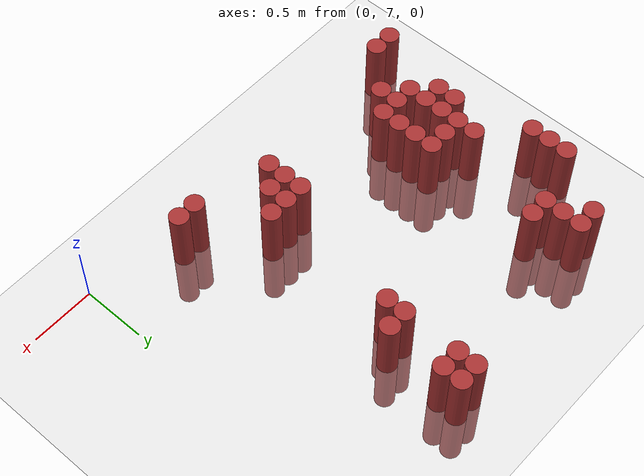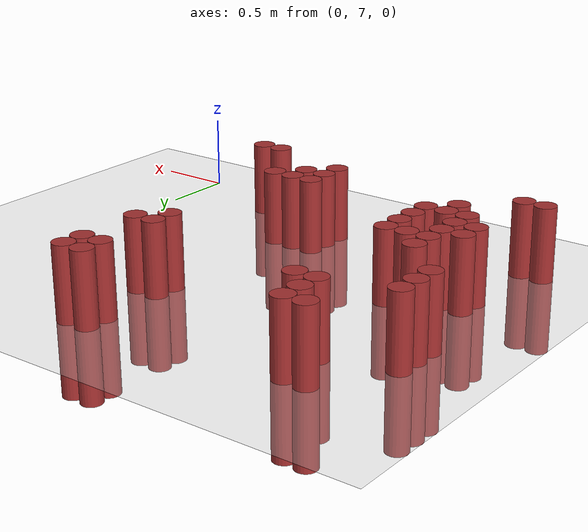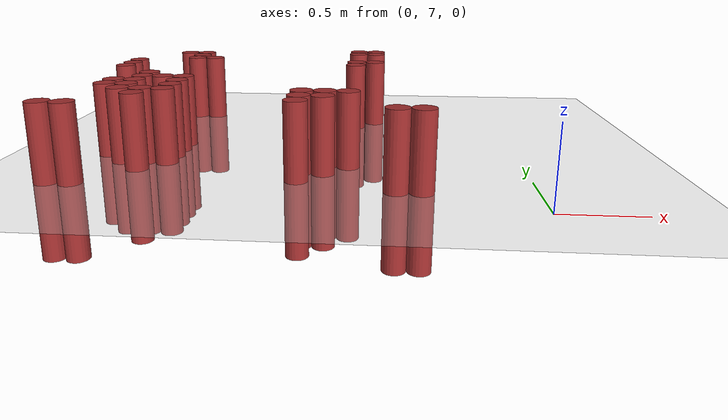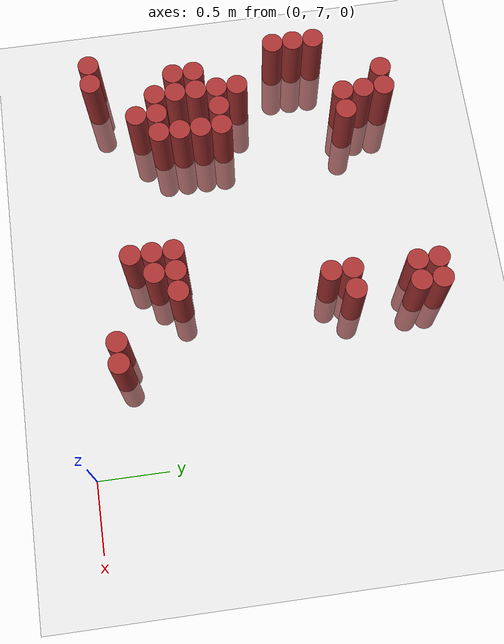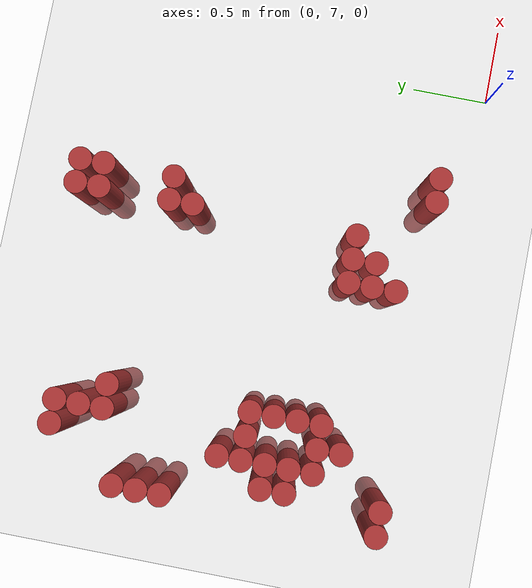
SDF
<sdf version="1.6">
 <world name="default">
  <model name="ground_plane">
   <static>1</static>
   <link name="link">
    <collision name="collision">
     <geometry><plane><normal>0 0 1</normal><size>100 100</size></plane></geometry>
     <surface><friction><ode><mu>100</mu><mu2>50</mu2></ode></friction></surface>
    </collision>
    <visual name="visual">
     <cast_shadows>0</cast_shadows>
     <geometry><plane><normal>0 0 1</normal><size>100 100</size></plane></geometry>
     <material>
      <script><uri>file://media/materials/scripts/gazebo.material</uri><name>Gazebo/Grey</name></script>
     </material>
    </visual>
   </link>
  </model>
  <model name="unit_cylinder_210">
   <static>1</static>
   <pose>-2.925000 7.275000 0.000000 0.000000 0.000000 0.000000</pose>
   <link name="link">
    <inertial>
     <mass>1</mass>
     <inertia><ixx>0.145833</ixx><ixy>0</ixy><ixz>0</ixz><iyy>0.145833</iyy><iyz>0</iyz><izz>0.125</izz></inertia>
    </inertial>
    <collision name="collision">
     <geometry><cylinder><radius>0.075000</radius><length>1</length></cylinder></geometry>
    </collision>
    <visual name="visual">
     <geometry><cylinder><radius>0.075000</radius><length>1</length></cylinder></geometry>
     <material>
      <ambient>0.648000 0.192000 0.192000 1</ambient>
      <diffuse>0.648000 0.192000 0.192000 1</diffuse>
     </material>
     <material>
      <script><name>Gazebo/Grey</name><uri>file://media/materials/scripts/gazebo.material</uri></script>
     </material>
    </visual>
    <sensor name="sensor_contact" type="contact"><contact><collision>collision</collision></contact></sensor>
   </link>
   <plugin filename="gz-sim-touchplugin-system" name="gz::sim::systems::TouchPlugin">
    <target>robot</target>
    <namespace>robot</namespace>
    <time>0.001</time>
    <enabled>true</enabled>
   </plugin>
  </model>
  <model name="unit_cylinder_211">
   <static>1</static>
   <pose>-2.925000 8.625000 0.000000 0.000000 0.000000 0.000000</pose>
   <link name="link">
    <inertial>
     <mass>1</mass>
     <inertia><ixx>0.145833</ixx><ixy>0</ixy><ixz>0</ixz><iyy>0.145833</iyy><iyz>0</iyz><izz>0.125</izz></inertia>
    </inertial>
    <collision name="collision">
     <geometry><cylinder><radius>0.075000</radius><length>1</length></cylinder></geometry>
    </collision>
    <visual name="visual">
     <geometry><cylinder><radius>0.075000</radius><length>1</length></cylinder></geometry>
     <material>
      <ambient>0.648000 0.192000 0.192000 1</ambient>
      <diffuse>0.648000 0.192000 0.192000 1</diffuse>
     </material>
     <material>
      <script><name>Gazebo/Grey</name><uri>file://media/materials/scripts/gazebo.material</uri></script>
     </material>
    </visual>
    <sensor name="sensor_contact" type="contact"><contact><collision>collision</collision></contact></sensor>
   </link>
   <plugin filename="gz-sim-touchplugin-system" name="gz::sim::systems::TouchPlugin">
    <target>robot</target>
    <namespace>robot</namespace>
    <time>0.001</time>
    <enabled>true</enabled>
   </plugin>
  </model>
  <model name="unit_cylinder_212">
   <static>1</static>
   <pose>-2.925000 8.775000 0.000000 0.000000 0.000000 0.000000</pose>
   <link name="link">
    <inertial>
     <mass>1</mass>
     <inertia><ixx>0.145833</ixx><ixy>0</ixy><ixz>0</ixz><iyy>0.145833</iyy><iyz>0</iyz><izz>0.125</izz></inertia>
    </inertial>
    <collision name="collision">
     <geometry><cylinder><radius>0.075000</radius><length>1</length></cylinder></geometry>
    </collision>
    <visual name="visual">
     <geometry><cylinder><radius>0.075000</radius><length>1</length></cylinder></geometry>
     <material>
      <ambient>0.648000 0.192000 0.192000 1</ambient>
      <diffuse>0.648000 0.192000 0.192000 1</diffuse>
     </material>
     <material>
      <script><name>Gazebo/Grey</name><uri>file://media/materials/scripts/gazebo.material</uri></script>
     </material>
    </visual>
    <sensor name="sensor_contact" type="contact"><contact><collision>collision</collision></contact></sensor>
   </link>
   <plugin filename="gz-sim-touchplugin-system" name="gz::sim::systems::TouchPlugin">
    <target>robot</target>
    <namespace>robot</namespace>
    <time>0.001</time>
    <enabled>true</enabled>
   </plugin>
  </model>
  <model name="unit_cylinder_213">
   <static>1</static>
   <pose>-2.925000 8.925000 0.000000 0.000000 0.000000 0.000000</pose>
   <link name="link">
    <inertial>
     <mass>1</mass>
     <inertia><ixx>0.145833</ixx><ixy>0</ixy><ixz>0</ixz><iyy>0.145833</iyy><iyz>0</iyz><izz>0.125</izz></inertia>
    </inertial>
    <collision name="collision">
     <geometry><cylinder><radius>0.075000</radius><length>1</length></cylinder></geometry>
    </collision>
    <visual name="visual">
     <geometry><cylinder><radius>0.075000</radius><length>1</length></cylinder></geometry>
     <material>
      <ambient>0.648000 0.192000 0.192000 1</ambient>
      <diffuse>0.648000 0.192000 0.192000 1</diffuse>
     </material>
     <material>
      <script><name>Gazebo/Grey</name><uri>file://media/materials/scripts/gazebo.material</uri></script>
     </material>
    </visual>
    <sensor name="sensor_contact" type="contact"><contact><collision>collision</collision></contact></sensor>
   </link>
   <plugin filename="gz-sim-touchplugin-system" name="gz::sim::systems::TouchPlugin">
    <target>robot</target>
    <namespace>robot</namespace>
    <time>0.001</time>
    <enabled>true</enabled>
   </plugin>
  </model>
  <model name="unit_cylinder_217">
   <static>1</static>
   <pose>-2.775000 7.275000 0.000000 0.000000 0.000000 0.000000</pose>
   <link name="link">
    <inertial>
     <mass>1</mass>
     <inertia><ixx>0.145833</ixx><ixy>0</ixy><ixz>0</ixz><iyy>0.145833</iyy><iyz>0</iyz><izz>0.125</izz></inertia>
    </inertial>
    <collision name="collision">
     <geometry><cylinder><radius>0.075000</radius><length>1</length></cylinder></geometry>
    </collision>
    <visual name="visual">
     <geometry><cylinder><radius>0.075000</radius><length>1</length></cylinder></geometry>
     <material>
      <ambient>0.648000 0.192000 0.192000 1</ambient>
      <diffuse>0.648000 0.192000 0.192000 1</diffuse>
     </material>
     <material>
      <script><name>Gazebo/Grey</name><uri>file://media/materials/scripts/gazebo.material</uri></script>
     </material>
    </visual>
    <sensor name="sensor_contact" type="contact"><contact><collision>collision</collision></contact></sensor>
   </link>
   <plugin filename="gz-sim-touchplugin-system" name="gz::sim::systems::TouchPlugin">
    <target>robot</target>
    <namespace>robot</namespace>
    <time>0.001</time>
    <enabled>true</enabled>
   </plugin>
  </model>
  <model name="unit_cylinder_218">
   <static>1</static>
   <pose>-2.775000 7.875000 0.000000 0.000000 0.000000 0.000000</pose>
   <link name="link">
    <inertial>
     <mass>1</mass>
     <inertia><ixx>0.145833</ixx><ixy>0</ixy><ixz>0</ixz><iyy>0.145833</iyy><iyz>0</iyz><izz>0.125</izz></inertia>
    </inertial>
    <collision name="collision">
     <geometry><cylinder><radius>0.075000</radius><length>1</length></cylinder></geometry>
    </collision>
    <visual name="visual">
     <geometry><cylinder><radius>0.075000</radius><length>1</length></cylinder></geometry>
     <material>
      <ambient>0.648000 0.192000 0.192000 1</ambient>
      <diffuse>0.648000 0.192000 0.192000 1</diffuse>
     </material>
     <material>
      <script><name>Gazebo/Grey</name><uri>file://media/materials/scripts/gazebo.material</uri></script>
     </material>
    </visual>
    <sensor name="sensor_contact" type="contact"><contact><collision>collision</collision></contact></sensor>
   </link>
   <plugin filename="gz-sim-touchplugin-system" name="gz::sim::systems::TouchPlugin">
    <target>robot</target>
    <namespace>robot</namespace>
    <time>0.001</time>
    <enabled>true</enabled>
   </plugin>
  </model>
  <model name="unit_cylinder_219">
   <static>1</static>
   <pose>-2.775000 8.025000 0.000000 0.000000 0.000000 0.000000</pose>
   <link name="link">
    <inertial>
     <mass>1</mass>
     <inertia><ixx>0.145833</ixx><ixy>0</ixy><ixz>0</ixz><iyy>0.145833</iyy><iyz>0</iyz><izz>0.125</izz></inertia>
    </inertial>
    <collision name="collision">
     <geometry><cylinder><radius>0.075000</radius><length>1</length></cylinder></geometry>
    </collision>
    <visual name="visual">
     <geometry><cylinder><radius>0.075000</radius><length>1</length></cylinder></geometry>
     <material>
      <ambient>0.648000 0.192000 0.192000 1</ambient>
      <diffuse>0.648000 0.192000 0.192000 1</diffuse>
     </material>
     <material>
      <script><name>Gazebo/Grey</name><uri>file://media/materials/scripts/gazebo.material</uri></script>
     </material>
    </visual>
    <sensor name="sensor_contact" type="contact"><contact><collision>collision</collision></contact></sensor>
   </link>
   <plugin filename="gz-sim-touchplugin-system" name="gz::sim::systems::TouchPlugin">
    <target>robot</target>
    <namespace>robot</namespace>
    <time>0.001</time>
    <enabled>true</enabled>
   </plugin>
  </model>
  <model name="unit_cylinder_225">
   <static>1</static>
   <pose>-2.625000 7.725000 0.000000 0.000000 0.000000 0.000000</pose>
   <link name="link">
    <inertial>
     <mass>1</mass>
     <inertia><ixx>0.145833</ixx><ixy>0</ixy><ixz>0</ixz><iyy>0.145833</iyy><iyz>0</iyz><izz>0.125</izz></inertia>
    </inertial>
    <collision name="collision">
     <geometry><cylinder><radius>0.075000</radius><length>1</length></cylinder></geometry>
    </collision>
    <visual name="visual">
     <geometry><cylinder><radius>0.075000</radius><length>1</length></cylinder></geometry>
     <material>
      <ambient>0.648000 0.192000 0.192000 1</ambient>
      <diffuse>0.648000 0.192000 0.192000 1</diffuse>
     </material>
     <material>
      <script><name>Gazebo/Grey</name><uri>file://media/materials/scripts/gazebo.material</uri></script>
     </material>
    </visual>
    <sensor name="sensor_contact" type="contact"><contact><collision>collision</collision></contact></sensor>
   </link>
   <plugin filename="gz-sim-touchplugin-system" name="gz::sim::systems::TouchPlugin">
    <target>robot</target>
    <namespace>robot</namespace>
    <time>0.001</time>
    <enabled>true</enabled>
   </plugin>
  </model>
  <model name="unit_cylinder_226">
   <static>1</static>
   <pose>-2.625000 7.875000 0.000000 0.000000 0.000000 0.000000</pose>
   <link name="link">
    <inertial>
     <mass>1</mass>
     <inertia><ixx>0.145833</ixx><ixy>0</ixy><ixz>0</ixz><iyy>0.145833</iyy><iyz>0</iyz><izz>0.125</izz></inertia>
    </inertial>
    <collision name="collision">
     <geometry><cylinder><radius>0.075000</radius><length>1</length></cylinder></geometry>
    </collision>
    <visual name="visual">
     <geometry><cylinder><radius>0.075000</radius><length>1</length></cylinder></geometry>
     <material>
      <ambient>0.648000 0.192000 0.192000 1</ambient>
      <diffuse>0.648000 0.192000 0.192000 1</diffuse>
     </material>
     <material>
      <script><name>Gazebo/Grey</name><uri>file://media/materials/scripts/gazebo.material</uri></script>
     </material>
    </visual>
    <sensor name="sensor_contact" type="contact"><contact><collision>collision</collision></contact></sensor>
   </link>
   <plugin filename="gz-sim-touchplugin-system" name="gz::sim::systems::TouchPlugin">
    <target>robot</target>
    <namespace>robot</namespace>
    <time>0.001</time>
    <enabled>true</enabled>
   </plugin>
  </model>
  <model name="unit_cylinder_227">
   <static>1</static>
   <pose>-2.625000 8.025000 0.000000 0.000000 0.000000 0.000000</pose>
   <link name="link">
    <inertial>
     <mass>1</mass>
     <inertia><ixx>0.145833</ixx><ixy>0</ixy><ixz>0</ixz><iyy>0.145833</iyy><iyz>0</iyz><izz>0.125</izz></inertia>
    </inertial>
    <collision name="collision">
     <geometry><cylinder><radius>0.075000</radius><length>1</length></cylinder></geometry>
    </collision>
    <visual name="visual">
     <geometry><cylinder><radius>0.075000</radius><length>1</length></cylinder></geometry>
     <material>
      <ambient>0.648000 0.192000 0.192000 1</ambient>
      <diffuse>0.648000 0.192000 0.192000 1</diffuse>
     </material>
     <material>
      <script><name>Gazebo/Grey</name><uri>file://media/materials/scripts/gazebo.material</uri></script>
     </material>
    </visual>
    <sensor name="sensor_contact" type="contact"><contact><collision>collision</collision></contact></sensor>
   </link>
   <plugin filename="gz-sim-touchplugin-system" name="gz::sim::systems::TouchPlugin">
    <target>robot</target>
    <namespace>robot</namespace>
    <time>0.001</time>
    <enabled>true</enabled>
   </plugin>
  </model>
  <model name="unit_cylinder_228">
   <static>1</static>
   <pose>-2.625000 8.175000 0.000000 0.000000 0.000000 0.000000</pose>
   <link name="link">
    <inertial>
     <mass>1</mass>
     <inertia><ixx>0.145833</ixx><ixy>0</ixy><ixz>0</ixz><iyy>0.145833</iyy><iyz>0</iyz><izz>0.125</izz></inertia>
    </inertial>
    <collision name="collision">
     <geometry><cylinder><radius>0.075000</radius><length>1</length></cylinder></geometry>
    </collision>
    <visual name="visual">
     <geometry><cylinder><radius>0.075000</radius><length>1</length></cylinder></geometry>
     <material>
      <ambient>0.648000 0.192000 0.192000 1</ambient>
      <diffuse>0.648000 0.192000 0.192000 1</diffuse>
     </material>
     <material>
      <script><name>Gazebo/Grey</name><uri>file://media/materials/scripts/gazebo.material</uri></script>
     </material>
    </visual>
    <sensor name="sensor_contact" type="contact"><contact><collision>collision</collision></contact></sensor>
   </link>
   <plugin filename="gz-sim-touchplugin-system" name="gz::sim::systems::TouchPlugin">
    <target>robot</target>
    <namespace>robot</namespace>
    <time>0.001</time>
    <enabled>true</enabled>
   </plugin>
  </model>
  <model name="unit_cylinder_229">
   <static>1</static>
   <pose>-2.625000 8.325000 0.000000 0.000000 0.000000 0.000000</pose>
   <link name="link">
    <inertial>
     <mass>1</mass>
     <inertia><ixx>0.145833</ixx><ixy>0</ixy><ixz>0</ixz><iyy>0.145833</iyy><iyz>0</iyz><izz>0.125</izz></inertia>
    </inertial>
    <collision name="collision">
     <geometry><cylinder><radius>0.075000</radius><length>1</length></cylinder></geometry>
    </collision>
    <visual name="visual">
     <geometry><cylinder><radius>0.075000</radius><length>1</length></cylinder></geometry>
     <material>
      <ambient>0.648000 0.192000 0.192000 1</ambient>
      <diffuse>0.648000 0.192000 0.192000 1</diffuse>
     </material>
     <material>
      <script><name>Gazebo/Grey</name><uri>file://media/materials/scripts/gazebo.material</uri></script>
     </material>
    </visual>
    <sensor name="sensor_contact" type="contact"><contact><collision>collision</collision></contact></sensor>
   </link>
   <plugin filename="gz-sim-touchplugin-system" name="gz::sim::systems::TouchPlugin">
    <target>robot</target>
    <namespace>robot</namespace>
    <time>0.001</time>
    <enabled>true</enabled>
   </plugin>
  </model>
  <model name="unit_cylinder_230">
   <static>1</static>
   <pose>-2.625000 9.375000 0.000000 0.000000 0.000000 0.000000</pose>
   <link name="link">
    <inertial>
     <mass>1</mass>
     <inertia><ixx>0.145833</ixx><ixy>0</ixy><ixz>0</ixz><iyy>0.145833</iyy><iyz>0</iyz><izz>0.125</izz></inertia>
    </inertial>
    <collision name="collision">
     <geometry><cylinder><radius>0.075000</radius><length>1</length></cylinder></geometry>
    </collision>
    <visual name="visual">
     <geometry><cylinder><radius>0.075000</radius><length>1</length></cylinder></geometry>
     <material>
      <ambient>0.648000 0.192000 0.192000 1</ambient>
      <diffuse>0.648000 0.192000 0.192000 1</diffuse>
     </material>
     <material>
      <script><name>Gazebo/Grey</name><uri>file://media/materials/scripts/gazebo.material</uri></script>
     </material>
    </visual>
    <sensor name="sensor_contact" type="contact"><contact><collision>collision</collision></contact></sensor>
   </link>
   <plugin filename="gz-sim-touchplugin-system" name="gz::sim::systems::TouchPlugin">
    <target>robot</target>
    <namespace>robot</namespace>
    <time>0.001</time>
    <enabled>true</enabled>
   </plugin>
  </model>
  <model name="unit_cylinder_239">
   <static>1</static>
   <pose>-2.475000 7.575000 0.000000 0.000000 0.000000 0.000000</pose>
   <link name="link">
    <inertial>
     <mass>1</mass>
     <inertia><ixx>0.145833</ixx><ixy>0</ixy><ixz>0</ixz><iyy>0.145833</iyy><iyz>0</iyz><izz>0.125</izz></inertia>
    </inertial>
    <collision name="collision">
     <geometry><cylinder><radius>0.075000</radius><length>1</length></cylinder></geometry>
    </collision>
    <visual name="visual">
     <geometry><cylinder><radius>0.075000</radius><length>1</length></cylinder></geometry>
     <material>
      <ambient>0.648000 0.192000 0.192000 1</ambient>
      <diffuse>0.648000 0.192000 0.192000 1</diffuse>
     </material>
     <material>
      <script><name>Gazebo/Grey</name><uri>file://media/materials/scripts/gazebo.material</uri></script>
     </material>
    </visual>
    <sensor name="sensor_contact" type="contact"><contact><collision>collision</collision></contact></sensor>
   </link>
   <plugin filename="gz-sim-touchplugin-system" name="gz::sim::systems::TouchPlugin">
    <target>robot</target>
    <namespace>robot</namespace>
    <time>0.001</time>
    <enabled>true</enabled>
   </plugin>
  </model>
  <model name="unit_cylinder_240">
   <static>1</static>
   <pose>-2.475000 7.725000 0.000000 0.000000 0.000000 0.000000</pose>
   <link name="link">
    <inertial>
     <mass>1</mass>
     <inertia><ixx>0.145833</ixx><ixy>0</ixy><ixz>0</ixz><iyy>0.145833</iyy><iyz>0</iyz><izz>0.125</izz></inertia>
    </inertial>
    <collision name="collision">
     <geometry><cylinder><radius>0.075000</radius><length>1</length></cylinder></geometry>
    </collision>
    <visual name="visual">
     <geometry><cylinder><radius>0.075000</radius><length>1</length></cylinder></geometry>
     <material>
      <ambient>0.648000 0.192000 0.192000 1</ambient>
      <diffuse>0.648000 0.192000 0.192000 1</diffuse>
     </material>
     <material>
      <script><name>Gazebo/Grey</name><uri>file://media/materials/scripts/gazebo.material</uri></script>
     </material>
    </visual>
    <sensor name="sensor_contact" type="contact"><contact><collision>collision</collision></contact></sensor>
   </link>
   <plugin filename="gz-sim-touchplugin-system" name="gz::sim::systems::TouchPlugin">
    <target>robot</target>
    <namespace>robot</namespace>
    <time>0.001</time>
    <enabled>true</enabled>
   </plugin>
  </model>
  <model name="unit_cylinder_241">
   <static>1</static>
   <pose>-2.475000 8.175000 0.000000 0.000000 0.000000 0.000000</pose>
   <link name="link">
    <inertial>
     <mass>1</mass>
     <inertia><ixx>0.145833</ixx><ixy>0</ixy><ixz>0</ixz><iyy>0.145833</iyy><iyz>0</iyz><izz>0.125</izz></inertia>
    </inertial>
    <collision name="collision">
     <geometry><cylinder><radius>0.075000</radius><length>1</length></cylinder></geometry>
    </collision>
    <visual name="visual">
     <geometry><cylinder><radius>0.075000</radius><length>1</length></cylinder></geometry>
     <material>
      <ambient>0.648000 0.192000 0.192000 1</ambient>
      <diffuse>0.648000 0.192000 0.192000 1</diffuse>
     </material>
     <material>
      <script><name>Gazebo/Grey</name><uri>file://media/materials/scripts/gazebo.material</uri></script>
     </material>
    </visual>
    <sensor name="sensor_contact" type="contact"><contact><collision>collision</collision></contact></sensor>
   </link>
   <plugin filename="gz-sim-touchplugin-system" name="gz::sim::systems::TouchPlugin">
    <target>robot</target>
    <namespace>robot</namespace>
    <time>0.001</time>
    <enabled>true</enabled>
   </plugin>
  </model>
  <model name="unit_cylinder_242">
   <static>1</static>
   <pose>-2.475000 9.075000 0.000000 0.000000 0.000000 0.000000</pose>
   <link name="link">
    <inertial>
     <mass>1</mass>
     <inertia><ixx>0.145833</ixx><ixy>0</ixy><ixz>0</ixz><iyy>0.145833</iyy><iyz>0</iyz><izz>0.125</izz></inertia>
    </inertial>
    <collision name="collision">
     <geometry><cylinder><radius>0.075000</radius><length>1</length></cylinder></geometry>
    </collision>
    <visual name="visual">
     <geometry><cylinder><radius>0.075000</radius><length>1</length></cylinder></geometry>
     <material>
      <ambient>0.648000 0.192000 0.192000 1</ambient>
      <diffuse>0.648000 0.192000 0.192000 1</diffuse>
     </material>
     <material>
      <script><name>Gazebo/Grey</name><uri>file://media/materials/scripts/gazebo.material</uri></script>
     </material>
    </visual>
    <sensor name="sensor_contact" type="contact"><contact><collision>collision</collision></contact></sensor>
   </link>
   <plugin filename="gz-sim-touchplugin-system" name="gz::sim::systems::TouchPlugin">
    <target>robot</target>
    <namespace>robot</namespace>
    <time>0.001</time>
    <enabled>true</enabled>
   </plugin>
  </model>
  <model name="unit_cylinder_243">
   <static>1</static>
   <pose>-2.475000 9.225000 0.000000 0.000000 0.000000 0.000000</pose>
   <link name="link">
    <inertial>
     <mass>1</mass>
     <inertia><ixx>0.145833</ixx><ixy>0</ixy><ixz>0</ixz><iyy>0.145833</iyy><iyz>0</iyz><izz>0.125</izz></inertia>
    </inertial>
    <collision name="collision">
     <geometry><cylinder><radius>0.075000</radius><length>1</length></cylinder></geometry>
    </collision>
    <visual name="visual">
     <geometry><cylinder><radius>0.075000</radius><length>1</length></cylinder></geometry>
     <material>
      <ambient>0.648000 0.192000 0.192000 1</ambient>
      <diffuse>0.648000 0.192000 0.192000 1</diffuse>
     </material>
     <material>
      <script><name>Gazebo/Grey</name><uri>file://media/materials/scripts/gazebo.material</uri></script>
     </material>
    </visual>
    <sensor name="sensor_contact" type="contact"><contact><collision>collision</collision></contact></sensor>
   </link>
   <plugin filename="gz-sim-touchplugin-system" name="gz::sim::systems::TouchPlugin">
    <target>robot</target>
    <namespace>robot</namespace>
    <time>0.001</time>
    <enabled>true</enabled>
   </plugin>
  </model>
  <model name="unit_cylinder_244">
   <static>1</static>
   <pose>-2.475000 9.375000 0.000000 0.000000 0.000000 0.000000</pose>
   <link name="link">
    <inertial>
     <mass>1</mass>
     <inertia><ixx>0.145833</ixx><ixy>0</ixy><ixz>0</ixz><iyy>0.145833</iyy><iyz>0</iyz><izz>0.125</izz></inertia>
    </inertial>
    <collision name="collision">
     <geometry><cylinder><radius>0.075000</radius><length>1</length></cylinder></geometry>
    </collision>
    <visual name="visual">
     <geometry><cylinder><radius>0.075000</radius><length>1</length></cylinder></geometry>
     <material>
      <ambient>0.648000 0.192000 0.192000 1</ambient>
      <diffuse>0.648000 0.192000 0.192000 1</diffuse>
     </material>
     <material>
      <script><name>Gazebo/Grey</name><uri>file://media/materials/scripts/gazebo.material</uri></script>
     </material>
    </visual>
    <sensor name="sensor_contact" type="contact"><contact><collision>collision</collision></contact></sensor>
   </link>
   <plugin filename="gz-sim-touchplugin-system" name="gz::sim::systems::TouchPlugin">
    <target>robot</target>
    <namespace>robot</namespace>
    <time>0.001</time>
    <enabled>true</enabled>
   </plugin>
  </model>
  <model name="unit_cylinder_249">
   <static>1</static>
   <pose>-2.325000 7.725000 0.000000 0.000000 0.000000 0.000000</pose>
   <link name="link">
    <inertial>
     <mass>1</mass>
     <inertia><ixx>0.145833</ixx><ixy>0</ixy><ixz>0</ixz><iyy>0.145833</iyy><iyz>0</iyz><izz>0.125</izz></inertia>
    </inertial>
    <collision name="collision">
     <geometry><cylinder><radius>0.075000</radius><length>1</length></cylinder></geometry>
    </collision>
    <visual name="visual">
     <geometry><cylinder><radius>0.075000</radius><length>1</length></cylinder></geometry>
     <material>
      <ambient>0.648000 0.192000 0.192000 1</ambient>
      <diffuse>0.648000 0.192000 0.192000 1</diffuse>
     </material>
     <material>
      <script><name>Gazebo/Grey</name><uri>file://media/materials/scripts/gazebo.material</uri></script>
     </material>
    </visual>
    <sensor name="sensor_contact" type="contact"><contact><collision>collision</collision></contact></sensor>
   </link>
   <plugin filename="gz-sim-touchplugin-system" name="gz::sim::systems::TouchPlugin">
    <target>robot</target>
    <namespace>robot</namespace>
    <time>0.001</time>
    <enabled>true</enabled>
   </plugin>
  </model>
  <model name="unit_cylinder_250">
   <static>1</static>
   <pose>-2.325000 7.875000 0.000000 0.000000 0.000000 0.000000</pose>
   <link name="link">
    <inertial>
     <mass>1</mass>
     <inertia><ixx>0.145833</ixx><ixy>0</ixy><ixz>0</ixz><iyy>0.145833</iyy><iyz>0</iyz><izz>0.125</izz></inertia>
    </inertial>
    <collision name="collision">
     <geometry><cylinder><radius>0.075000</radius><length>1</length></cylinder></geometry>
    </collision>
    <visual name="visual">
     <geometry><cylinder><radius>0.075000</radius><length>1</length></cylinder></geometry>
     <material>
      <ambient>0.648000 0.192000 0.192000 1</ambient>
      <diffuse>0.648000 0.192000 0.192000 1</diffuse>
     </material>
     <material>
      <script><name>Gazebo/Grey</name><uri>file://media/materials/scripts/gazebo.material</uri></script>
     </material>
    </visual>
    <sensor name="sensor_contact" type="contact"><contact><collision>collision</collision></contact></sensor>
   </link>
   <plugin filename="gz-sim-touchplugin-system" name="gz::sim::systems::TouchPlugin">
    <target>robot</target>
    <namespace>robot</namespace>
    <time>0.001</time>
    <enabled>true</enabled>
   </plugin>
  </model>
  <model name="unit_cylinder_251">
   <static>1</static>
   <pose>-2.325000 8.025000 0.000000 0.000000 0.000000 0.000000</pose>
   <link name="link">
    <inertial>
     <mass>1</mass>
     <inertia><ixx>0.145833</ixx><ixy>0</ixy><ixz>0</ixz><iyy>0.145833</iyy><iyz>0</iyz><izz>0.125</izz></inertia>
    </inertial>
    <collision name="collision">
     <geometry><cylinder><radius>0.075000</radius><length>1</length></cylinder></geometry>
    </collision>
    <visual name="visual">
     <geometry><cylinder><radius>0.075000</radius><length>1</length></cylinder></geometry>
     <material>
      <ambient>0.648000 0.192000 0.192000 1</ambient>
      <diffuse>0.648000 0.192000 0.192000 1</diffuse>
     </material>
     <material>
      <script><name>Gazebo/Grey</name><uri>file://media/materials/scripts/gazebo.material</uri></script>
     </material>
    </visual>
    <sensor name="sensor_contact" type="contact"><contact><collision>collision</collision></contact></sensor>
   </link>
   <plugin filename="gz-sim-touchplugin-system" name="gz::sim::systems::TouchPlugin">
    <target>robot</target>
    <namespace>robot</namespace>
    <time>0.001</time>
    <enabled>true</enabled>
   </plugin>
  </model>
  <model name="unit_cylinder_252">
   <static>1</static>
   <pose>-2.325000 8.175000 0.000000 0.000000 0.000000 0.000000</pose>
   <link name="link">
    <inertial>
     <mass>1</mass>
     <inertia><ixx>0.145833</ixx><ixy>0</ixy><ixz>0</ixz><iyy>0.145833</iyy><iyz>0</iyz><izz>0.125</izz></inertia>
    </inertial>
    <collision name="collision">
     <geometry><cylinder><radius>0.075000</radius><length>1</length></cylinder></geometry>
    </collision>
    <visual name="visual">
     <geometry><cylinder><radius>0.075000</radius><length>1</length></cylinder></geometry>
     <material>
      <ambient>0.648000 0.192000 0.192000 1</ambient>
      <diffuse>0.648000 0.192000 0.192000 1</diffuse>
     </material>
     <material>
      <script><name>Gazebo/Grey</name><uri>file://media/materials/scripts/gazebo.material</uri></script>
     </material>
    </visual>
    <sensor name="sensor_contact" type="contact"><contact><collision>collision</collision></contact></sensor>
   </link>
   <plugin filename="gz-sim-touchplugin-system" name="gz::sim::systems::TouchPlugin">
    <target>robot</target>
    <namespace>robot</namespace>
    <time>0.001</time>
    <enabled>true</enabled>
   </plugin>
  </model>
  <model name="unit_cylinder_253">
   <static>1</static>
   <pose>-2.325000 9.075000 0.000000 0.000000 0.000000 0.000000</pose>
   <link name="link">
    <inertial>
     <mass>1</mass>
     <inertia><ixx>0.145833</ixx><ixy>0</ixy><ixz>0</ixz><iyy>0.145833</iyy><iyz>0</iyz><izz>0.125</izz></inertia>
    </inertial>
    <collision name="collision">
     <geometry><cylinder><radius>0.075000</radius><length>1</length></cylinder></geometry>
    </collision>
    <visual name="visual">
     <geometry><cylinder><radius>0.075000</radius><length>1</length></cylinder></geometry>
     <material>
      <ambient>0.648000 0.192000 0.192000 1</ambient>
      <diffuse>0.648000 0.192000 0.192000 1</diffuse>
     </material>
     <material>
      <script><name>Gazebo/Grey</name><uri>file://media/materials/scripts/gazebo.material</uri></script>
     </material>
    </visual>
    <sensor name="sensor_contact" type="contact"><contact><collision>collision</collision></contact></sensor>
   </link>
   <plugin filename="gz-sim-touchplugin-system" name="gz::sim::systems::TouchPlugin">
    <target>robot</target>
    <namespace>robot</namespace>
    <time>0.001</time>
    <enabled>true</enabled>
   </plugin>
  </model>
  <model name="unit_cylinder_275">
   <static>1</static>
   <pose>-1.425000 7.425000 0.000000 0.000000 0.000000 0.000000</pose>
   <link name="link">
    <inertial>
     <mass>1</mass>
     <inertia><ixx>0.145833</ixx><ixy>0</ixy><ixz>0</ixz><iyy>0.145833</iyy><iyz>0</iyz><izz>0.125</izz></inertia>
    </inertial>
    <collision name="collision">
     <geometry><cylinder><radius>0.075000</radius><length>1</length></cylinder></geometry>
    </collision>
    <visual name="visual">
     <geometry><cylinder><radius>0.075000</radius><length>1</length></cylinder></geometry>
     <material>
      <ambient>0.648000 0.192000 0.192000 1</ambient>
      <diffuse>0.648000 0.192000 0.192000 1</diffuse>
     </material>
     <material>
      <script><name>Gazebo/Grey</name><uri>file://media/materials/scripts/gazebo.material</uri></script>
     </material>
    </visual>
    <sensor name="sensor_contact" type="contact"><contact><collision>collision</collision></contact></sensor>
   </link>
   <plugin filename="gz-sim-touchplugin-system" name="gz::sim::systems::TouchPlugin">
    <target>robot</target>
    <namespace>robot</namespace>
    <time>0.001</time>
    <enabled>true</enabled>
   </plugin>
  </model>
  <model name="unit_cylinder_276">
   <static>1</static>
   <pose>-1.425000 7.575000 0.000000 0.000000 0.000000 0.000000</pose>
   <link name="link">
    <inertial>
     <mass>1</mass>
     <inertia><ixx>0.145833</ixx><ixy>0</ixy><ixz>0</ixz><iyy>0.145833</iyy><iyz>0</iyz><izz>0.125</izz></inertia>
    </inertial>
    <collision name="collision">
     <geometry><cylinder><radius>0.075000</radius><length>1</length></cylinder></geometry>
    </collision>
    <visual name="visual">
     <geometry><cylinder><radius>0.075000</radius><length>1</length></cylinder></geometry>
     <material>
      <ambient>0.648000 0.192000 0.192000 1</ambient>
      <diffuse>0.648000 0.192000 0.192000 1</diffuse>
     </material>
     <material>
      <script><name>Gazebo/Grey</name><uri>file://media/materials/scripts/gazebo.material</uri></script>
     </material>
    </visual>
    <sensor name="sensor_contact" type="contact"><contact><collision>collision</collision></contact></sensor>
   </link>
   <plugin filename="gz-sim-touchplugin-system" name="gz::sim::systems::TouchPlugin">
    <target>robot</target>
    <namespace>robot</namespace>
    <time>0.001</time>
    <enabled>true</enabled>
   </plugin>
  </model>
  <model name="unit_cylinder_277">
   <static>1</static>
   <pose>-1.425000 7.725000 0.000000 0.000000 0.000000 0.000000</pose>
   <link name="link">
    <inertial>
     <mass>1</mass>
     <inertia><ixx>0.145833</ixx><ixy>0</ixy><ixz>0</ixz><iyy>0.145833</iyy><iyz>0</iyz><izz>0.125</izz></inertia>
    </inertial>
    <collision name="collision">
     <geometry><cylinder><radius>0.075000</radius><length>1</length></cylinder></geometry>
    </collision>
    <visual name="visual">
     <geometry><cylinder><radius>0.075000</radius><length>1</length></cylinder></geometry>
     <material>
      <ambient>0.648000 0.192000 0.192000 1</ambient>
      <diffuse>0.648000 0.192000 0.192000 1</diffuse>
     </material>
     <material>
      <script><name>Gazebo/Grey</name><uri>file://media/materials/scripts/gazebo.material</uri></script>
     </material>
    </visual>
    <sensor name="sensor_contact" type="contact"><contact><collision>collision</collision></contact></sensor>
   </link>
   <plugin filename="gz-sim-touchplugin-system" name="gz::sim::systems::TouchPlugin">
    <target>robot</target>
    <namespace>robot</namespace>
    <time>0.001</time>
    <enabled>true</enabled>
   </plugin>
  </model>
  <model name="unit_cylinder_278">
   <static>1</static>
   <pose>-1.275000 7.575000 0.000000 0.000000 0.000000 0.000000</pose>
   <link name="link">
    <inertial>
     <mass>1</mass>
     <inertia><ixx>0.145833</ixx><ixy>0</ixy><ixz>0</ixz><iyy>0.145833</iyy><iyz>0</iyz><izz>0.125</izz></inertia>
    </inertial>
    <collision name="collision">
     <geometry><cylinder><radius>0.075000</radius><length>1</length></cylinder></geometry>
    </collision>
    <visual name="visual">
     <geometry><cylinder><radius>0.075000</radius><length>1</length></cylinder></geometry>
     <material>
      <ambient>0.648000 0.192000 0.192000 1</ambient>
      <diffuse>0.648000 0.192000 0.192000 1</diffuse>
     </material>
     <material>
      <script><name>Gazebo/Grey</name><uri>file://media/materials/scripts/gazebo.material</uri></script>
     </material>
    </visual>
    <sensor name="sensor_contact" type="contact"><contact><collision>collision</collision></contact></sensor>
   </link>
   <plugin filename="gz-sim-touchplugin-system" name="gz::sim::systems::TouchPlugin">
    <target>robot</target>
    <namespace>robot</namespace>
    <time>0.001</time>
    <enabled>true</enabled>
   </plugin>
  </model>
  <model name="unit_cylinder_279">
   <static>1</static>
   <pose>-1.275000 7.725000 0.000000 0.000000 0.000000 0.000000</pose>
   <link name="link">
    <inertial>
     <mass>1</mass>
     <inertia><ixx>0.145833</ixx><ixy>0</ixy><ixz>0</ixz><iyy>0.145833</iyy><iyz>0</iyz><izz>0.125</izz></inertia>
    </inertial>
    <collision name="collision">
     <geometry><cylinder><radius>0.075000</radius><length>1</length></cylinder></geometry>
    </collision>
    <visual name="visual">
     <geometry><cylinder><radius>0.075000</radius><length>1</length></cylinder></geometry>
     <material>
      <ambient>0.648000 0.192000 0.192000 1</ambient>
      <diffuse>0.648000 0.192000 0.192000 1</diffuse>
     </material>
     <material>
      <script><name>Gazebo/Grey</name><uri>file://media/materials/scripts/gazebo.material</uri></script>
     </material>
    </visual>
    <sensor name="sensor_contact" type="contact"><contact><collision>collision</collision></contact></sensor>
   </link>
   <plugin filename="gz-sim-touchplugin-system" name="gz::sim::systems::TouchPlugin">
    <target>robot</target>
    <namespace>robot</namespace>
    <time>0.001</time>
    <enabled>true</enabled>
   </plugin>
  </model>
  <model name="unit_cylinder_280">
   <static>1</static>
   <pose>-1.125000 7.725000 0.000000 0.000000 0.000000 0.000000</pose>
   <link name="link">
    <inertial>
     <mass>1</mass>
     <inertia><ixx>0.145833</ixx><ixy>0</ixy><ixz>0</ixz><iyy>0.145833</iyy><iyz>0</iyz><izz>0.125</izz></inertia>
    </inertial>
    <collision name="collision">
     <geometry><cylinder><radius>0.075000</radius><length>1</length></cylinder></geometry>
    </collision>
    <visual name="visual">
     <geometry><cylinder><radius>0.075000</radius><length>1</length></cylinder></geometry>
     <material>
      <ambient>0.648000 0.192000 0.192000 1</ambient>
      <diffuse>0.648000 0.192000 0.192000 1</diffuse>
     </material>
     <material>
      <script><name>Gazebo/Grey</name><uri>file://media/materials/scripts/gazebo.material</uri></script>
     </material>
    </visual>
    <sensor name="sensor_contact" type="contact"><contact><collision>collision</collision></contact></sensor>
   </link>
   <plugin filename="gz-sim-touchplugin-system" name="gz::sim::systems::TouchPlugin">
    <target>robot</target>
    <namespace>robot</namespace>
    <time>0.001</time>
    <enabled>true</enabled>
   </plugin>
  </model>
  <model name="unit_cylinder_281">
   <static>1</static>
   <pose>-1.125000 8.775000 0.000000 0.000000 0.000000 0.000000</pose>
   <link name="link">
    <inertial>
     <mass>1</mass>
     <inertia><ixx>0.145833</ixx><ixy>0</ixy><ixz>0</ixz><iyy>0.145833</iyy><iyz>0</iyz><izz>0.125</izz></inertia>
    </inertial>
    <collision name="collision">
     <geometry><cylinder><radius>0.075000</radius><length>1</length></cylinder></geometry>
    </collision>
    <visual name="visual">
     <geometry><cylinder><radius>0.075000</radius><length>1</length></cylinder></geometry>
     <material>
      <ambient>0.648000 0.192000 0.192000 1</ambient>
      <diffuse>0.648000 0.192000 0.192000 1</diffuse>
     </material>
     <material>
      <script><name>Gazebo/Grey</name><uri>file://media/materials/scripts/gazebo.material</uri></script>
     </material>
    </visual>
    <sensor name="sensor_contact" type="contact"><contact><collision>collision</collision></contact></sensor>
   </link>
   <plugin filename="gz-sim-touchplugin-system" name="gz::sim::systems::TouchPlugin">
    <target>robot</target>
    <namespace>robot</namespace>
    <time>0.001</time>
    <enabled>true</enabled>
   </plugin>
  </model>
  <model name="unit_cylinder_282">
   <static>1</static>
   <pose>-1.125000 8.925000 0.000000 0.000000 0.000000 0.000000</pose>
   <link name="link">
    <inertial>
     <mass>1</mass>
     <inertia><ixx>0.145833</ixx><ixy>0</ixy><ixz>0</ixz><iyy>0.145833</iyy><iyz>0</iyz><izz>0.125</izz></inertia>
    </inertial>
    <collision name="collision">
     <geometry><cylinder><radius>0.075000</radius><length>1</length></cylinder></geometry>
    </collision>
    <visual name="visual">
     <geometry><cylinder><radius>0.075000</radius><length>1</length></cylinder></geometry>
     <material>
      <ambient>0.648000 0.192000 0.192000 1</ambient>
      <diffuse>0.648000 0.192000 0.192000 1</diffuse>
     </material>
     <material>
      <script><name>Gazebo/Grey</name><uri>file://media/materials/scripts/gazebo.material</uri></script>
     </material>
    </visual>
    <sensor name="sensor_contact" type="contact"><contact><collision>collision</collision></contact></sensor>
   </link>
   <plugin filename="gz-sim-touchplugin-system" name="gz::sim::systems::TouchPlugin">
    <target>robot</target>
    <namespace>robot</namespace>
    <time>0.001</time>
    <enabled>true</enabled>
   </plugin>
  </model>
  <model name="unit_cylinder_283">
   <static>1</static>
   <pose>-1.125000 9.375000 0.000000 0.000000 0.000000 0.000000</pose>
   <link name="link">
    <inertial>
     <mass>1</mass>
     <inertia><ixx>0.145833</ixx><ixy>0</ixy><ixz>0</ixz><iyy>0.145833</iyy><iyz>0</iyz><izz>0.125</izz></inertia>
    </inertial>
    <collision name="collision">
     <geometry><cylinder><radius>0.075000</radius><length>1</length></cylinder></geometry>
    </collision>
    <visual name="visual">
     <geometry><cylinder><radius>0.075000</radius><length>1</length></cylinder></geometry>
     <material>
      <ambient>0.648000 0.192000 0.192000 1</ambient>
      <diffuse>0.648000 0.192000 0.192000 1</diffuse>
     </material>
     <material>
      <script><name>Gazebo/Grey</name><uri>file://media/materials/scripts/gazebo.material</uri></script>
     </material>
    </visual>
    <sensor name="sensor_contact" type="contact"><contact><collision>collision</collision></contact></sensor>
   </link>
   <plugin filename="gz-sim-touchplugin-system" name="gz::sim::systems::TouchPlugin">
    <target>robot</target>
    <namespace>robot</namespace>
    <time>0.001</time>
    <enabled>true</enabled>
   </plugin>
  </model>
  <model name="unit_cylinder_284">
   <static>1</static>
   <pose>-1.125000 9.525000 0.000000 0.000000 0.000000 0.000000</pose>
   <link name="link">
    <inertial>
     <mass>1</mass>
     <inertia><ixx>0.145833</ixx><ixy>0</ixy><ixz>0</ixz><iyy>0.145833</iyy><iyz>0</iyz><izz>0.125</izz></inertia>
    </inertial>
    <collision name="collision">
     <geometry><cylinder><radius>0.075000</radius><length>1</length></cylinder></geometry>
    </collision>
    <visual name="visual">
     <geometry><cylinder><radius>0.075000</radius><length>1</length></cylinder></geometry>
     <material>
      <ambient>0.648000 0.192000 0.192000 1</ambient>
      <diffuse>0.648000 0.192000 0.192000 1</diffuse>
     </material>
     <material>
      <script><name>Gazebo/Grey</name><uri>file://media/materials/scripts/gazebo.material</uri></script>
     </material>
    </visual>
    <sensor name="sensor_contact" type="contact"><contact><collision>collision</collision></contact></sensor>
   </link>
   <plugin filename="gz-sim-touchplugin-system" name="gz::sim::systems::TouchPlugin">
    <target>robot</target>
    <namespace>robot</namespace>
    <time>0.001</time>
    <enabled>true</enabled>
   </plugin>
  </model>
  <model name="unit_cylinder_285">
   <static>1</static>
   <pose>-0.975000 8.925000 0.000000 0.000000 0.000000 0.000000</pose>
   <link name="link">
    <inertial>
     <mass>1</mass>
     <inertia><ixx>0.145833</ixx><ixy>0</ixy><ixz>0</ixz><iyy>0.145833</iyy><iyz>0</iyz><izz>0.125</izz></inertia>
    </inertial>
    <collision name="collision">
     <geometry><cylinder><radius>0.075000</radius><length>1</length></cylinder></geometry>
    </collision>
    <visual name="visual">
     <geometry><cylinder><radius>0.075000</radius><length>1</length></cylinder></geometry>
     <material>
      <ambient>0.648000 0.192000 0.192000 1</ambient>
      <diffuse>0.648000 0.192000 0.192000 1</diffuse>
     </material>
     <material>
      <script><name>Gazebo/Grey</name><uri>file://media/materials/scripts/gazebo.material</uri></script>
     </material>
    </visual>
    <sensor name="sensor_contact" type="contact"><contact><collision>collision</collision></contact></sensor>
   </link>
   <plugin filename="gz-sim-touchplugin-system" name="gz::sim::systems::TouchPlugin">
    <target>robot</target>
    <namespace>robot</namespace>
    <time>0.001</time>
    <enabled>true</enabled>
   </plugin>
  </model>
  <model name="unit_cylinder_286">
   <static>1</static>
   <pose>-0.975000 9.375000 0.000000 0.000000 0.000000 0.000000</pose>
   <link name="link">
    <inertial>
     <mass>1</mass>
     <inertia><ixx>0.145833</ixx><ixy>0</ixy><ixz>0</ixz><iyy>0.145833</iyy><iyz>0</iyz><izz>0.125</izz></inertia>
    </inertial>
    <collision name="collision">
     <geometry><cylinder><radius>0.075000</radius><length>1</length></cylinder></geometry>
    </collision>
    <visual name="visual">
     <geometry><cylinder><radius>0.075000</radius><length>1</length></cylinder></geometry>
     <material>
      <ambient>0.648000 0.192000 0.192000 1</ambient>
      <diffuse>0.648000 0.192000 0.192000 1</diffuse>
     </material>
     <material>
      <script><name>Gazebo/Grey</name><uri>file://media/materials/scripts/gazebo.material</uri></script>
     </material>
    </visual>
    <sensor name="sensor_contact" type="contact"><contact><collision>collision</collision></contact></sensor>
   </link>
   <plugin filename="gz-sim-touchplugin-system" name="gz::sim::systems::TouchPlugin">
    <target>robot</target>
    <namespace>robot</namespace>
    <time>0.001</time>
    <enabled>true</enabled>
   </plugin>
  </model>
  <model name="unit_cylinder_287">
   <static>1</static>
   <pose>-0.975000 9.525000 0.000000 0.000000 0.000000 0.000000</pose>
   <link name="link">
    <inertial>
     <mass>1</mass>
     <inertia><ixx>0.145833</ixx><ixy>0</ixy><ixz>0</ixz><iyy>0.145833</iyy><iyz>0</iyz><izz>0.125</izz></inertia>
    </inertial>
    <collision name="collision">
     <geometry><cylinder><radius>0.075000</radius><length>1</length></cylinder></geometry>
    </collision>
    <visual name="visual">
     <geometry><cylinder><radius>0.075000</radius><length>1</length></cylinder></geometry>
     <material>
      <ambient>0.648000 0.192000 0.192000 1</ambient>
      <diffuse>0.648000 0.192000 0.192000 1</diffuse>
     </material>
     <material>
      <script><name>Gazebo/Grey</name><uri>file://media/materials/scripts/gazebo.material</uri></script>
     </material>
    </visual>
    <sensor name="sensor_contact" type="contact"><contact><collision>collision</collision></contact></sensor>
   </link>
   <plugin filename="gz-sim-touchplugin-system" name="gz::sim::systems::TouchPlugin">
    <target>robot</target>
    <namespace>robot</namespace>
    <time>0.001</time>
    <enabled>true</enabled>
   </plugin>
  </model>
  <model name="unit_cylinder_288">
   <static>1</static>
   <pose>-0.825000 7.275000 0.000000 0.000000 0.000000 0.000000</pose>
   <link name="link">
    <inertial>
     <mass>1</mass>
     <inertia><ixx>0.145833</ixx><ixy>0</ixy><ixz>0</ixz><iyy>0.145833</iyy><iyz>0</iyz><izz>0.125</izz></inertia>
    </inertial>
    <collision name="collision">
     <geometry><cylinder><radius>0.075000</radius><length>1</length></cylinder></geometry>
    </collision>
    <visual name="visual">
     <geometry><cylinder><radius>0.075000</radius><length>1</length></cylinder></geometry>
     <material>
      <ambient>0.648000 0.192000 0.192000 1</ambient>
      <diffuse>0.648000 0.192000 0.192000 1</diffuse>
     </material>
     <material>
      <script><name>Gazebo/Grey</name><uri>file://media/materials/scripts/gazebo.material</uri></script>
     </material>
    </visual>
    <sensor name="sensor_contact" type="contact"><contact><collision>collision</collision></contact></sensor>
   </link>
   <plugin filename="gz-sim-touchplugin-system" name="gz::sim::systems::TouchPlugin">
    <target>robot</target>
    <namespace>robot</namespace>
    <time>0.001</time>
    <enabled>true</enabled>
   </plugin>
  </model>
  <model name="unit_cylinder_292">
   <static>1</static>
   <pose>-0.675000 7.275000 0.000000 0.000000 0.000000 0.000000</pose>
   <link name="link">
    <inertial>
     <mass>1</mass>
     <inertia><ixx>0.145833</ixx><ixy>0</ixy><ixz>0</ixz><iyy>0.145833</iyy><iyz>0</iyz><izz>0.125</izz></inertia>
    </inertial>
    <collision name="collision">
     <geometry><cylinder><radius>0.075000</radius><length>1</length></cylinder></geometry>
    </collision>
    <visual name="visual">
     <geometry><cylinder><radius>0.075000</radius><length>1</length></cylinder></geometry>
     <material>
      <ambient>0.648000 0.192000 0.192000 1</ambient>
      <diffuse>0.648000 0.192000 0.192000 1</diffuse>
     </material>
     <material>
      <script><name>Gazebo/Grey</name><uri>file://media/materials/scripts/gazebo.material</uri></script>
     </material>
    </visual>
    <sensor name="sensor_contact" type="contact"><contact><collision>collision</collision></contact></sensor>
   </link>
   <plugin filename="gz-sim-touchplugin-system" name="gz::sim::systems::TouchPlugin">
    <target>robot</target>
    <namespace>robot</namespace>
    <time>0.001</time>
    <enabled>true</enabled>
   </plugin>
  </model>
 </world>
</sdf>
